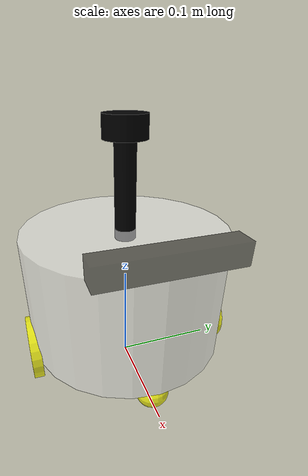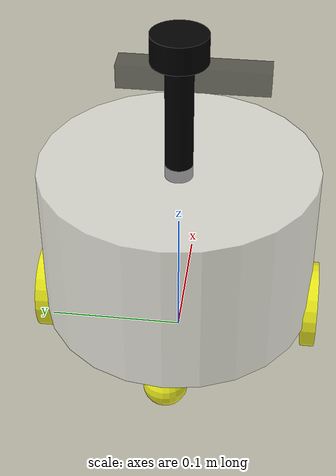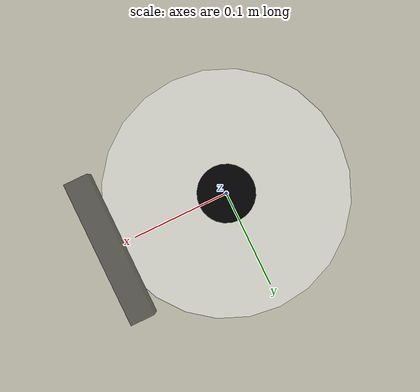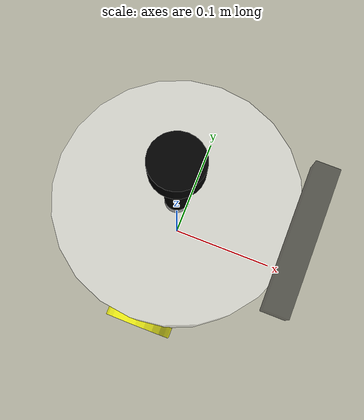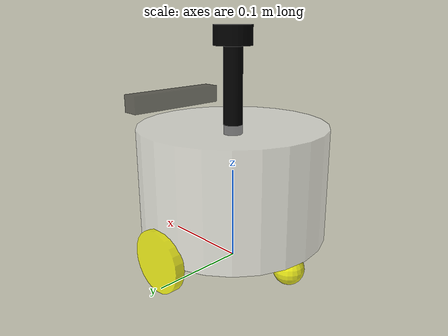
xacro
<?xml version="1.0"?>
<robot xmlns:xacro="http://ros.org/wiki/xacro" name="first_robot">
<!-- 基础部分 -->
<xacro:include filename="$(find fishbot_description)/urdf/fishbot/base.urdf.xacro" />
<!-- 传感器部分 -->
<xacro:include filename="$(find fishbot_description)/urdf/fishbot/sensor/imu.urdf.xacro" />
<xacro:include filename="$(find fishbot_description)/urdf/fishbot/sensor/camera.urdf.xacro" />
<xacro:include filename="$(find fishbot_description)/urdf/fishbot/sensor/laser.urdf.xacro" />
<!-- 执行器部分 -->
<xacro:include filename="$(find fishbot_description)/urdf/actuator/wheel.urdf.xacro" />
<xacro:include filename="$(find fishbot_description)/urdf/actuator/caster.urdf.xacro" />
<!-- 插件部分 -->
<xacro:include filename="$(find fishbot_description)/urdf/plugins/gazebo_control_plugin.xacro"/>

<xacro:base_xacro length="0.12" radius="0.10" />
<xacro:imu_xacro xyz="0.0 0.0 0.02" />
<xacro:camera_xacro xyz="0.10 0.0 0.075" />
<xacro:laser_xacro xyz="0.0 0.0 0.10"/>
<xacro:wheel_xacro wheel_name ='left_wheel' xyz = '0 0.10 -0.06'/>
<xacro:wheel_xacro wheel_name ='right_wheel' xyz = '0 -0.10 -0.06'/>
<xacro:caster_xacro caster_name='front_caster' xyz = '0.08 0.0 -0.076'/>
<xacro:caster_xacro caster_name='back_caster' xyz = '-0.08 0.0 -0.076'/>

<xacro:gazebo_control_plugin/>

</robot>

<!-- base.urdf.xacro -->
<robot xmlns:xacro="http://ros.org/wiki/xacro" >
    <xacro:include filename="$(find fishbot_description)/urdf/fishbot/common_inertia.xacro"/>

    <xacro:macro name="base_xacro" params= "radius length">
        <!-- 机器人身体部分 -->
        <link name="base_footprint"/>

        <link name="base_link">
            <visual>
                <!-- 沿着自己几何中心的偏移和旋转 -->
                <origin xyz="0.0 0.0 0.0" rpy="0.0 0.0 0.0"/>
            <!-- 几何形状 -->
                    <geometry>
                    <!-- 圆柱体           半径               高度 -->
                        <cylinder radius="${radius}" length="${length}"/>
                    </geometry>
                <!-- 材质颜色 -->
                    <material name="white">
                        <color rgba="1.0 1.0 1.0 0.5"/>
                    </material>
            </visual>
            <!-- 碰撞属性 -->
            <collision>
                <!-- 沿着自己几何中心的偏移和旋转 -->
                <origin xyz="0.0 0.0 0.0" rpy="0.0 0.0 0.0"/>
            <!-- 几何形状 -->
                    <geometry>
                    <!-- 圆柱体           半径               高度 -->
                        <cylinder radius="${radius}" length="${length}"/>
                    </geometry>
                <!-- 材质颜色 -->
                    <material name="white">
                        <color rgba="1.0 1.0 1.0 0.5"/>
                    </material>
            </collision>
            <xacro:cylinder_inertia m="1.0" r="${radius}" h ="${length}" />

    </link>
    <joint name="joint_name" type="fixed">
        <parent link="base_footprint"/>
        <child link="base_link"/>
        <origin xyz="0.0 0.0 ${length/2.0+0.032-0.001}" rpy="0.0 0.0 0.0"/>

    </joint>
    </xacro:macro>

</robot>

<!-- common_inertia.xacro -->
<robot xmlns:xacro="http://ros.org/wiki/xacro" xmlns:fishros="http://fishros.com">
  <xacro:macro name="box_inertia" params="m w h d">
    <inertial>
      <mass value="${m}"/>
      <inertia ixx="${(m/12) * (h*h + d*d)}" ixy="0.0" ixz="0.0" iyy="${(m/12) * (w*w + d*d)}" iyz="0.0" izz="${(m/12) * (w*w + h*h)}"/>
    </inertial>
  </xacro:macro>

  <xacro:macro name="cylinder_inertia" params="m r h">
    <inertial>
      <mass value="${m}"/>
      <inertia ixx="${(m/12) * (3*r*r + h*h)}" ixy = "0" ixz = "0" iyy="${(m/12) * (3*r*r + h*h)}" iyz = "0" izz="${(m/2) * (r*r)}"/>
    </inertial>
  </xacro:macro>

  <xacro:macro name="sphere_inertia" params="m r">
    <inertial>
      <mass value="${m}"/>
      <inertia ixx="${(2/5) * m * (r*r)}" ixy="0.0" ixz="0.0" iyy="${(2/5) * m * (r*r)}" iyz="0.0" izz="${(2/5) * m * (r*r)}"/>
    </inertial>
  </xacro:macro>

  <xacro:macro name="sphere_visual" params="r origin_r origin_p origin_y">
    <visual>
      <origin xyz="0 0 0" rpy="${origin_r} ${origin_p} ${origin_y}"/>
      <geometry>
          <sphere radius="${r}"/>
      </geometry>
      <material name="blue">
        <color rgba="0.0 0.0 0.8 1.0"/>
      </material>
    </visual>
  </xacro:macro>

<xacro:macro name="sphere_collision" params="r origin_r origin_p origin_y">
    <collision>
      <origin xyz="0 0 0" rpy="${origin_r} ${origin_p} ${origin_y}"/>
      <geometry>
          <sphere radius="${r}"/>
      </geometry>
        <material name="green">
            <color rgba="0.0 0.8 0.0 1.0"/>
        </material>
    </collision>
</xacro:macro>

<xacro:macro name="box_visual" params="w d h origin_r origin_p origin_y">
    <visual>
      <origin xyz="0 0 0" rpy="${origin_r} ${origin_p} ${origin_y}"/>
      <geometry>
          <box size="${w} ${d} ${h}" />
      </geometry>
      <material name="blue">
        <color rgba="0.0 0.0 0.8 1.0"/>
      </material>
    </visual>
</xacro:macro>

<xacro:macro name="box_collision" params="w d h origin_r origin_p origin_y">
    <collision>
      <origin xyz="0 0 0" rpy="${origin_r} ${origin_p} ${origin_y}"/>
      <geometry>
          <box size="${w} ${d} ${h}" />
      </geometry>
        <material name="green">
            <color rgba="0.0 0.8 0.0 1.0"/>
        </material>
    </collision>
</xacro:macro>

<xacro:macro name="cylinder_visual" params="r h origin_r origin_p origin_y">
    <visual>
      <origin xyz="0 0 0" rpy="${origin_r} ${origin_p} ${origin_y}"/>
      <geometry>
         <cylinder length="${h}" radius="${r}"/>
      </geometry>
      <material name="blue">
        <color rgba="0.0 0.0 0.8 1.0"/>
      </material>
    </visual>
</xacro:macro>

<xacro:macro name="cylinder_collision" params="r h origin_r origin_p origin_y">
    <collision>
      <origin xyz="0 0 0" rpy="${origin_r} ${origin_p} ${origin_y}"/>
      <geometry>
         <cylinder length="${h}" radius="${r}"/>
      </geometry>
      <material name="blue">
        <color rgba="0.0 0.0 0.8 1.0"/>
      </material>
    </collision>
</xacro:macro>

</robot>

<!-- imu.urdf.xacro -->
<robot xmlns:xacro="http://ros.org/wiki/xacro" >
<xacro:include filename="$(find fishbot_description)/urdf/fishbot/common_inertia.xacro"/>

    <!-- 机器人imu部件，惯性测量传感器 -->
    <xacro:macro name="imu_xacro" params='xyz'>
    <link name="imu_link">
        <visual>
          <!-- 沿着自己几何中心的偏移和旋转 -->
            <origin xyz="0.0 0.0 0.0" rpy="0.0 0.0 0.0"/>
        <!-- 几何形状 -->
            <geometry>
            <!-- 圆柱体           半径               高度 -->
               <box size="0.02 0.02 0.02"/>
            </geometry>
            <!-- 材质颜色 -->
            <material name="black">
                <color rgba="0.0 0.0 1.0 0.5"/>
            </material>
        </visual>
        <collision>
            <!-- 沿着自己几何中心的偏移和旋转 -->
            <origin xyz="0.0 0.0 0.0" rpy="0.0 0.0 0.0"/>
        <!-- 几何形状 -->
            <geometry>
            <!-- 圆柱体           半径               高度 -->
               <box size="0.02 0.02 0.02"/>
            </geometry>
            <!-- 材质颜色 -->
            <material name="black">
                <color rgba="0.0 0.0 1.0 0.5"/>
            </material>
        </collision>
                    <xacro:box_inertia  m="0.05" w= '0.02' h='0.02' d="0.02"/>

    </link>
    <!-- 机器人关节，用于组合机器人的部件 -->
         <joint name="imu_joint" type="fixed">
            <parent link="base_link"/>
            <child link="imu_link"/>
            <origin xyz="${xyz}" rpy="0.0 0.0 0.0"/>

        </joint>
    </xacro:macro>

</robot>

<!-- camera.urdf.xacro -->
<robot xmlns:xacro="http://ros.org/wiki/xacro" >
<xacro:include filename="$(find fishbot_description)/urdf/fishbot/common_inertia.xacro"/>

    <xacro:macro name="camera_xacro" params='xyz'>
    <link name="camera_link">
        <visual>
          <!-- 沿着自己几何中心的偏移和旋转 -->
            <origin xyz="0.0 0.0 0.0" rpy="0.0 0.0 0.0"/>
        <!-- 几何形状 -->
            <geometry>
            <!-- 圆柱体           半径               高度 -->
               <box size="0.02 0.12 0.02"/>
            </geometry>
            <!-- 材质颜色 -->
            <material name="black">
                <color rgba="0.0 0.0 0.0 0.5"/>
            </material>
        </visual>
        <collision>
            <!-- 沿着自己几何中心的偏移和旋转 -->
            <origin xyz="0.0 0.0 0.0" rpy="0.0 0.0 0.0"/>
        <!-- 几何形状 -->
            <geometry>
            <!-- 圆柱体           半径               高度 -->
               <box size="0.02 0.12 0.02"/>
            </geometry>
            <!-- 材质颜色 -->
            <material name="black">
                <color rgba="0.0 0.0 0.0 0.5"/>
            </material>
        </collision>
            <xacro:box_inertia  m="0.1" w= '0.02' h='0.10' d="0.02"/>
    </link>
    <!-- 机器人关节，用于组合机器人的部件 -->
         <joint name="camera_joint" type="fixed">
            <parent link="base_link"/>
            <child link="camera_link"/>
            <origin xyz="${xyz}" rpy="0.0 0.0 0.0"/>

        </joint>
    </xacro:macro>

</robot>

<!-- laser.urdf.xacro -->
<robot xmlns:xacro="http://ros.org/wiki/xacro" >
<xacro:include filename="$(find fishbot_description)/urdf/fishbot/common_inertia.xacro"/>

    <xacro:macro name="laser_xacro" params='xyz'>
    <!-- 雷达支撑杆 -->
    <link name="laser_cylinder_link">
        <visual>
          <!-- 沿着自己几何中心的偏移和旋转 -->
            <origin xyz="0.0 0.0 0.0" rpy="0.0 0.0 0.0"/>
        <!-- 几何形状 -->
            <geometry>
            <!-- 圆柱体           半径               高度 -->
                <cylinder radius="0.01" length="0.10"/>
            </geometry>
            <!-- 材质颜色 -->
            <material name="black">
                <color rgba="0.0 0.0 0.0 1.0"/>
            </material>
        </visual>
        <collision>
               <!-- 沿着自己几何中心的偏移和旋转 -->
            <origin xyz="0.0 0.0 0.0" rpy="0.0 0.0 0.0"/>
        <!-- 几何形状 -->
            <geometry>
            <!-- 圆柱体           半径               高度 -->
                <cylinder radius="0.01" length="0.10"/>
            </geometry>
            <!-- 材质颜色 -->
            <material name="black">
                <color rgba="0.0 0.0 0.0 1.0"/>
            </material>
        </collision>
                <xacro:cylinder_inertia m="0.05" r="0.01" h ="0.10" />

    </link>
    <!-- 雷达部分 -->
    <link name="laser_link">
        <visual>
          <!-- 沿着自己几何中心的偏移和旋转 -->
            <origin xyz="0.0 0.0 0.0" rpy="0.0 0.0 0.0"/>
        <!-- 几何形状 -->
            <geometry>
            <!-- 圆柱体           半径               高度 -->
                <cylinder radius="0.02" length="0.02"/>
            </geometry>
            <!-- 材质颜色 -->
            <material name="black">
                <color rgba="0.0 0.0 0.0 1.0"/>
            </material>
        </visual>
        <collision>
              <!-- 沿着自己几何中心的偏移和旋转 -->
            <origin xyz="0.0 0.0 0.0" rpy="0.0 0.0 0.0"/>
        <!-- 几何形状 -->
            <geometry>
            <!-- 圆柱体           半径               高度 -->
                <cylinder radius="0.02" length="0.02"/>
            </geometry>
            <!-- 材质颜色 -->
            <material name="black">
                <color rgba="0.0 0.0 0.0 1.0"/>
            </material>
        </collision>
        <!-- rviz中添加碰撞属性 -->
        <xacro:cylinder_inertia m="0.10" r="0.02" h ="0.02" />

    </link>
    <!-- 机器人关节，用于组合机器人的部件 -->
         <joint name="laser_joint" type="fixed">
            <parent link="laser_cylinder_link"/>
            <child link="laser_link"/>
            <origin xyz="0.0 0.0 0.05" rpy="0.0 0.0 0.0"/>

        </joint>

         <joint name="laser_cylinder_joint" type="fixed">
            <parent link="base_link"/>
            <child link="laser_cylinder_link"/>
            <origin xyz="${xyz}" rpy="0.0 0.0 0.0"/>

        </joint>

        <!-- gazebo中展示颜色 -->
        <gazebo reference ="laser_cylinder_link">
            <material>Gazebo/Black </material>
        </gazebo>

        <gazebo reference ="laser_link" >
            <material>Gazebo/Black</material>
        </gazebo>
     </xacro:macro>
</robot>

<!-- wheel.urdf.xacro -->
<robot xmlns:xacro="http://ros.org/wiki/xacro" >
<xacro:include filename="$(find fishbot_description)/urdf/fishbot/common_inertia.xacro"/>

    <!-- 机器人imu部件，惯性测量传感器 -->
    <xacro:macro name="wheel_xacro" params='wheel_name xyz'>
    <link name="${wheel_name}_link">
        <visual>
          <!-- 要把轮子竖起来所以u修改偏移量 -->
            <origin xyz="0.0 0.0 0.0" rpy="1.57079 0.0 0.0"/>
        <!-- 几何形状 -->
            <geometry>
            <!-- 圆柱体 -->
               <cylinder radius="0.032" length="0.01"/>
            </geometry>
            <!-- 材质颜色 -->
            <material name="yellow">
                <color rgba="1.0 1.0 0.0 0.8"/>
            </material>
        </visual>
        <collision>
             <!-- 要把轮子竖起来所以u修改偏移量 -->
            <origin xyz="0.0 0.0 0.0" rpy="1.57079 0.0 0.0"/>
        <!-- 几何形状 -->
            <geometry>
            <!-- 圆柱体 -->
               <cylinder radius="0.032" length="0.01"/>
            </geometry>
            <!-- 材质颜色 -->
            <material name="yellow">
                <color rgba="1.0 1.0 0.0 0.8"/>
            </material>
        </collision>

        <xacro:cylinder_inertia m="0.05" r="0.032" h ="0.01" />

    </link>
    <!-- 机器人关节，用于组合机器人的部件 -->
         <joint name="${wheel_name}_joint" type="continuous">
            <parent link="base_link"/>
            <child link="${wheel_name}_link"/>
            <origin xyz="${xyz}" rpy="0.0 0.0 0.0"/>
            <!-- 表示围绕y轴旋转 -->
            <axis xyz="0.0 1.0 0.0"/>

        </joint>
        <!-- 设置轮子摩擦力  这些标签分别代表了 摩擦系数，刚度系数 ，阻尼系数  imu1：且向摩擦系数，imu2：fa向摩擦系数 kp;接触的刚度系数,kd：接触的阻尼系数-->
        <gazebo reference = "${wheel_name}_link">
            <imu1 value = "20.0"/>
            <imu2 value = "20.0"/>
            <kp value="10000000000.0"/>
            <kd value="1.0"/>

        </gazebo>
    </xacro:macro>

</robot>

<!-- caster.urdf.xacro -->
<robot xmlns:xacro="http://ros.org/wiki/xacro" >
<xacro:include filename="$(find fishbot_description)/urdf/fishbot/common_inertia.xacro"/>

    <!-- 机器人imu部件，惯性测量传感器 -->
    <xacro:macro name="caster_xacro" params='caster_name xyz'>
    <link name="${caster_name}_link">
        <visual>
          <!-- 要把轮子竖起来所以u修改偏移量 -->
            <origin xyz="0.0 0.0 0.0" rpy="0 0.0 0.0"/>
        <!-- 几何形状 -->
            <geometry>
            <!-- 球状万象轮 -->
               <sphere radius="0.016"/>
            </geometry>
            <!-- 材质颜色 -->
            <material name="yellow">
                <color rgba="1.0 1.0 0.0 0.8"/>
            </material>
        </visual>
        <!-- 碰撞属性 -->
        <collision>
             <!-- 要把轮子竖起来所以u修改偏移量 -->
            <origin xyz="0.0 0.0 0.0" rpy="0 0.0 0.0"/>
        <!-- 几何形状 -->
            <geometry>
            <!-- 球状万象轮 -->
               <sphere radius="0.016"/>
            </geometry>
            <!-- 材质颜色 -->
            <material name="yellow">
                <color rgba="1.0 1.0 0.0 0.8"/>
            </material>
        </collision>
        <xacro:sphere_inertia m="0.05" r="0.016"  />
    </link>
    <!-- 机器人关节，用于组合机器人的部件 -->
         <joint name="${caster_name}_joint" type="fixed">
            <parent link="base_link"/>
            <child link="${caster_name}_link"/>
            <origin xyz="${xyz}" rpy="0.0 0.0 0.0"/>

        </joint>

           <!-- 设置轮子摩擦力  这些标签分别代表了 摩擦系数，刚度系数 ，阻尼系数  imu1：切向摩擦系数，imu2：法向摩擦系数 kp;接触的刚度系数,kd：接触的阻尼系数-->
        <gazebo reference = "${caster_name}_link">
            <imu1 value = "0.0"/>
            <imu2 value = "0.0"/>
            <kp value="10000000000.0"/>
            <kd value="1.0"/>
        </gazebo>
    </xacro:macro>

</robot>
